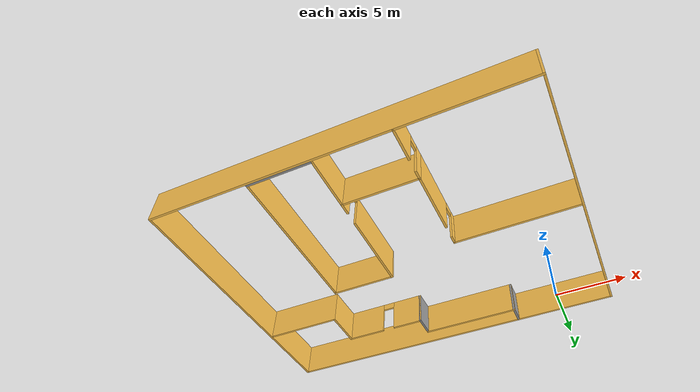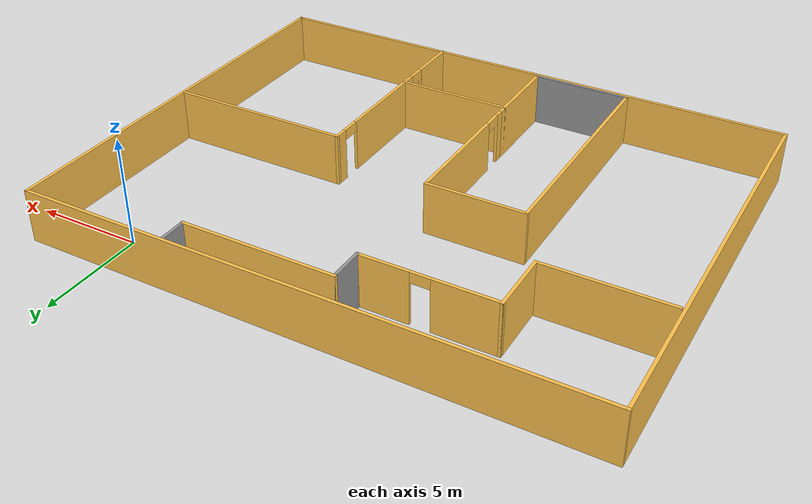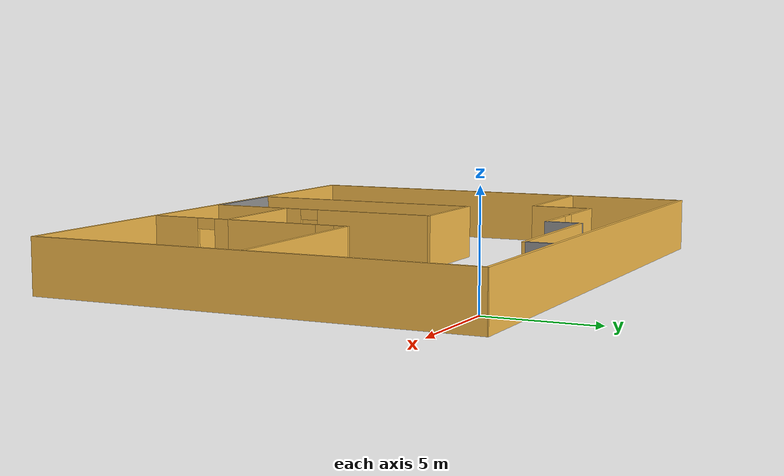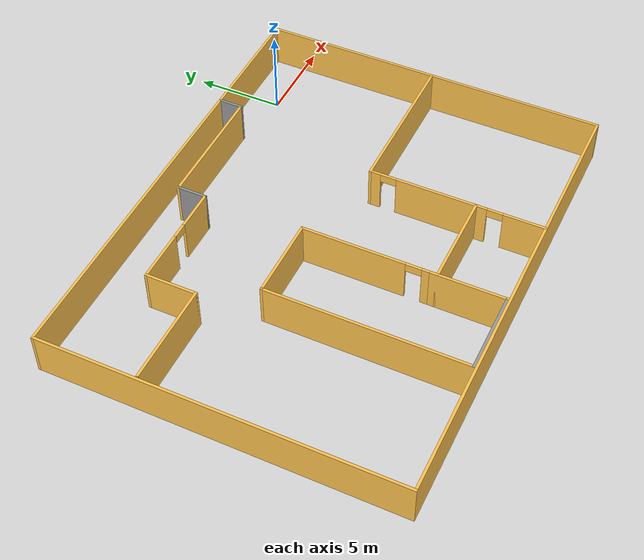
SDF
<?xml version='1.0'?>
<sdf version='1.6'>
  <model name='apartment'>
    <pose frame=''>-9.34307 -8.2219 0 0 -0 0</pose>
    <link name='Wall_100'>
      <collision name='Wall_100_Collision'>
        <geometry>
          <box>
            <size>4.25 0.15 2.5</size>
          </box>
        </geometry>
        <pose frame=''>0 0 1.25 0 -0 0</pose>
      </collision>
      <visual name='Wall_100_Visual'>
        <pose frame=''>0 0 1.25 0 -0 0</pose>
        <geometry>
          <box>
            <size>4.25 0.15 2.5</size>
          </box>
        </geometry>
        <material>
          <script>
            <uri>file://media/materials/scripts/gazebo.material</uri>
            <name>Gazebo/Grey</name>
          </script>
          <ambient>1 0.764706 0.305882 1</ambient>
        </material>
        <meta>
          <layer>0</layer>
        </meta>
      </visual>
      <pose frame=''>-0.999926 -7.85236 0 0 -0 1.5708</pose>
    </link>
    <link name='Wall_102'>
      <pose frame=''>4.35007 -8.0771 0 0 0 -1.5708</pose>
      <visual name='Wall_102_Visual_0'>
        <pose frame=''>-1.64399 0 1.25 0 -0 0</pose>
        <geometry>
          <box>
            <size>0.712026 0.15 2.5</size>
          </box>
        </geometry>
        <material>
          <script>
            <uri>file://media/materials/scripts/gazebo.material</uri>
            <name>Gazebo/Grey</name>
          </script>
          <ambient>1 0.764706 0.305882 1</ambient>
        </material>
        <meta>
          <layer>0</layer>
        </meta>
      </visual>
      <collision name='Wall_102_Collision_0'>
        <geometry>
          <box>
            <size>0.712026 0.15 2.5</size>
          </box>
        </geometry>
        <pose frame=''>-1.64399 0 1.25 0 -0 0</pose>
      </collision>
      <visual name='Wall_102_Visual_1'>
        <pose frame=''>0.806013 0 1.25 0 -0 0</pose>
        <geometry>
          <box>
            <size>2.38797 0.15 2.5</size>
          </box>
        </geometry>
        <material>
          <script>
            <uri>file://media/materials/scripts/gazebo.material</uri>
            <name>Gazebo/Grey</name>
          </script>
          <ambient>1 0.764706 0.305882 1</ambient>
        </material>
        <meta>
          <layer>0</layer>
        </meta>
      </visual>
      <collision name='Wall_102_Collision_1'>
        <geometry>
          <box>
            <size>2.38797 0.15 2.5</size>
          </box>
        </geometry>
        <pose frame=''>0.806013 0 1.25 0 -0 0</pose>
      </collision>
      <visual name='Wall_102_Visual_2'>
        <pose frame=''>-0.837974 0 2.25 0 -0 0</pose>
        <geometry>
          <box>
            <size>0.9 0.15 0.5</size>
          </box>
        </geometry>
        <material>
          <script>
            <uri>file://media/materials/scripts/gazebo.material</uri>
            <name>Gazebo/Grey</name>
          </script>
          <ambient>1 0.764706 0.305882 1</ambient>
        </material>
        <meta>
          <layer>0</layer>
        </meta>
      </visual>
      <collision name='Wall_102_Collision_2'>
        <geometry>
          <box>
            <size>0.9 0.15 0.5</size>
          </box>
        </geometry>
        <pose frame=''>-0.837974 0 2.25 0 -0 0</pose>
      </collision>
    </link>
    <link name='Wall_76'>
      <collision name='Wall_76_Collision'>
        <geometry>
          <box>
            <size>26.25 0.15 2.5</size>
          </box>
        </geometry>
        <pose frame=''>0 0 1.25 0 -0 0</pose>
      </collision>
      <visual name='Wall_76_Visual'>
        <pose frame=''>0 0 1.25 0 -0 0</pose>
        <geometry>
          <box>
            <size>26.25 0.15 2.5</size>
          </box>
        </geometry>
        <material>
          <script>
            <uri>file://media/materials/scripts/gazebo.material</uri>
            <name>Gazebo/Grey</name>
          </script>
          <ambient>1 0.764706 0.305882 1</ambient>
        </material>
        <meta>
          <layer>0</layer>
        </meta>
      </visual>
      <pose frame=''>-7.2e-05 10.0501 0 0 -0 3.14159</pose>
    </link>
    <link name='Wall_77'>
      <collision name='Wall_77_Collision'>
        <geometry>
          <box>
            <size>20.25 0.15 2.5</size>
          </box>
        </geometry>
        <pose frame=''>0 0 1.25 0 -0 0</pose>
      </collision>
      <visual name='Wall_77_Visual'>
        <pose frame=''>0 0 1.25 0 -0 0</pose>
        <geometry>
          <box>
            <size>20.25 0.15 2.5</size>
          </box>
        </geometry>
        <material>
          <script>
            <uri>file://media/materials/scripts/gazebo.material</uri>
            <name>Gazebo/Grey</name>
          </script>
          <ambient>1 0.764706 0.305882 1</ambient>
        </material>
        <meta>
          <layer>0</layer>
        </meta>
      </visual>
      <pose frame=''>-13.0501 9.7e-05 0 0 0 -1.5708</pose>
    </link>
    <link name='Wall_78'>
      <collision name='Wall_78_Collision'>
        <geometry>
          <box>
            <size>26.25 0.15 2.5</size>
          </box>
        </geometry>
        <pose frame=''>0 0 1.25 0 -0 0</pose>
      </collision>
      <visual name='Wall_78_Visual'>
        <pose frame=''>0 0 1.25 0 -0 0</pose>
        <geometry>
          <box>
            <size>26.25 0.15 2.5</size>
          </box>
        </geometry>
        <material>
          <script>
            <uri>file://media/materials/scripts/gazebo.material</uri>
            <name>Gazebo/Grey</name>
          </script>
          <ambient>1 0.764706 0.305882 1</ambient>
        </material>
        <meta>
          <layer>0</layer>
        </meta>
      </visual>
      <pose frame=''>-1e-06 -10.05 0 0 0 -7e-06</pose>
    </link>
    <link name='Wall_79'>
      <collision name='Wall_79_Collision'>
        <geometry>
          <box>
            <size>20.2 0.15 2.5</size>
          </box>
        </geometry>
        <pose frame=''>0 0 1.25 0 -0 0</pose>
      </collision>
      <visual name='Wall_79_Visual'>
        <pose frame=''>0 0 1.25 0 -0 0</pose>
        <geometry>
          <box>
            <size>20.2 0.15 2.5</size>
          </box>
        </geometry>
        <material>
          <script>
            <uri>file://media/materials/scripts/gazebo.material</uri>
            <name>Gazebo/Grey</name>
          </script>
          <ambient>1 0.764706 0.305882 1</ambient>
        </material>
        <meta>
          <layer>0</layer>
        </meta>
      </visual>
      <pose frame=''>13.0501 -0.025096 0 0 -0 1.5708</pose>
    </link>
    <link name='Wall_81'>
      <collision name='Wall_81_Collision'>
        <geometry>
          <box>
            <size>5.75 0.15 2.5</size>
          </box>
        </geometry>
        <pose frame=''>0 0 1.25 0 -0 0</pose>
      </collision>
      <visual name='Wall_81_Visual'>
        <pose frame=''>0 0 1.25 0 -0 0</pose>
        <geometry>
          <box>
            <size>5.75 0.15 2.5</size>
          </box>
        </geometry>
        <material>
          <script>
            <uri>file://media/materials/scripts/gazebo.material</uri>
            <name>Gazebo/Grey</name>
          </script>
          <ambient>1 0.764706 0.305882 1</ambient>
        </material>
        <meta>
          <layer>0</layer>
        </meta>
      </visual>
      <pose frame=''>-10.0529 4.27779 0 0 -0 0</pose>
    </link>
    <link name='Wall_82'>
      <collision name='Wall_82_Collision'>
        <geometry>
          <box>
            <size>3 0.15 2.5</size>
          </box>
        </geometry>
        <pose frame=''>0 0 1.25 0 -0 0</pose>
      </collision>
      <visual name='Wall_82_Visual'>
        <pose frame=''>0 0 1.25 0 -0 0</pose>
        <geometry>
          <box>
            <size>3 0.15 2.5</size>
          </box>
        </geometry>
        <material>
          <script>
            <uri>file://media/materials/scripts/gazebo.material</uri>
            <name>Gazebo/Grey</name>
          </script>
          <ambient>1 0.764706 0.305882 1</ambient>
        </material>
        <meta>
          <layer>0</layer>
        </meta>
      </visual>
      <pose frame=''>-7.2529 5.70279 0 0 -0 1.5708</pose>
    </link>
    <link name='Wall_83'>
      <pose frame=''>-4.2029 7.12779 0 0 -0 0</pose>
      <visual name='Wall_83_Visual_0'>
        <pose frame=''>-1.63623 0 1.25 0 -0 0</pose>
        <geometry>
          <box>
            <size>2.97755 0.15 2.5</size>
          </box>
        </geometry>
        <material>
          <script>
            <uri>file://media/materials/scripts/gazebo.material</uri>
            <name>Gazebo/Grey</name>
          </script>
          <ambient>1 0.764706 0.305882 1</ambient>
        </material>
        <meta>
          <layer>0</layer>
        </meta>
      </visual>
      <collision name='Wall_83_Collision_0'>
        <geometry>
          <box>
            <size>2.97755 0.15 2.5</size>
          </box>
        </geometry>
        <pose frame=''>-1.63623 0 1.25 0 -0 0</pose>
      </collision>
      <visual name='Wall_83_Visual_1'>
        <pose frame=''>1.93877 0 1.25 0 -0 0</pose>
        <geometry>
          <box>
            <size>2.37245 0.15 2.5</size>
          </box>
        </geometry>
        <material>
          <script>
            <uri>file://media/materials/scripts/gazebo.material</uri>
            <name>Gazebo/Grey</name>
          </script>
          <ambient>1 0.764706 0.305882 1</ambient>
        </material>
        <meta>
          <layer>0</layer>
        </meta>
      </visual>
      <collision name='Wall_83_Collision_1'>
        <geometry>
          <box>
            <size>2.37245 0.15 2.5</size>
          </box>
        </geometry>
        <pose frame=''>1.93877 0 1.25 0 -0 0</pose>
      </collision>
      <visual name='Wall_83_Visual_2'>
        <pose frame=''>0.302549 0 2.25 0 -0 0</pose>
        <geometry>
          <box>
            <size>0.9 0.15 0.5</size>
          </box>
        </geometry>
        <material>
          <script>
            <uri>file://media/materials/scripts/gazebo.material</uri>
            <name>Gazebo/Grey</name>
          </script>
          <ambient>1 0.764706 0.305882 1</ambient>
        </material>
        <meta>
          <layer>0</layer>
        </meta>
      </visual>
      <collision name='Wall_83_Collision_2'>
        <geometry>
          <box>
            <size>0.9 0.15 0.5</size>
          </box>
        </geometry>
        <pose frame=''>0.302549 0 2.25 0 -0 0</pose>
      </collision>
    </link>
    <link name='Wall_84'>
      <collision name='Wall_84_Collision'>
        <geometry>
          <box>
            <size>1.75 0.15 2.5</size>
          </box>
        </geometry>
        <pose frame=''>0 0 1.25 0 -0 0</pose>
      </collision>
      <visual name='Wall_84_Visual'>
        <pose frame=''>0 0 1.25 0 -0 0</pose>
        <geometry>
          <box>
            <size>1.75 0.15 2.5</size>
          </box>
        </geometry>
        <material>
          <script>
            <uri>file://media/materials/scripts/gazebo.material</uri>
            <name>Gazebo/Grey</name>
          </script>
          <ambient>1 1 1 1</ambient>
        </material>
        <meta>
          <layer>0</layer>
        </meta>
      </visual>
      <pose frame=''>-1.1529 7.92779 0 0 -0 1.5708</pose>
    </link>
    <link name='Wall_85'>
      <collision name='Wall_85_Collision'>
        <geometry>
          <box>
            <size>7.25 0.15 2.5</size>
          </box>
        </geometry>
        <pose frame=''>0 0 1.25 0 -0 0</pose>
      </collision>
      <visual name='Wall_85_Visual'>
        <pose frame=''>0 0 1.25 0 -0 0</pose>
        <geometry>
          <box>
            <size>7.25 0.15 2.5</size>
          </box>
        </geometry>
        <material>
          <script>
            <uri>file://media/materials/scripts/gazebo.material</uri>
            <name>Gazebo/Grey</name>
          </script>
          <ambient>1 0.764706 0.305882 1</ambient>
        </material>
        <meta>
          <layer>0</layer>
        </meta>
      </visual>
      <pose frame=''>2.39709 8.72785 0 0 -0 1.7e-05</pose>
    </link>
    <link name='Wall_91'>
      <collision name='Wall_91_Collision'>
        <geometry>
          <box>
            <size>1.4 0.15 2.5</size>
          </box>
        </geometry>
        <pose frame=''>0 0 1.25 0 -0 0</pose>
      </collision>
      <visual name='Wall_91_Visual'>
        <pose frame=''>0 0 1.25 0 -0 0</pose>
        <geometry>
          <box>
            <size>1.4 0.15 2.5</size>
          </box>
        </geometry>
        <material>
          <script>
            <uri>file://media/materials/scripts/gazebo.material</uri>
            <name>Gazebo/Grey</name>
          </script>
          <ambient>1 1 1 1</ambient>
        </material>
        <meta>
          <layer>0</layer>
        </meta>
      </visual>
      <pose frame=''>5.94707 9.3529 0 0 -0 1.5708</pose>
    </link>
    <link name='Wall_93'>
      <collision name='Wall_93_Collision'>
        <geometry>
          <box>
            <size>8.75 0.15 2.5</size>
          </box>
        </geometry>
        <pose frame=''>0 0 1.25 0 -0 0</pose>
      </collision>
      <visual name='Wall_93_Visual'>
        <pose frame=''>0 0 1.25 0 -0 0</pose>
        <geometry>
          <box>
            <size>8.75 0.15 2.5</size>
          </box>
        </geometry>
        <material>
          <script>
            <uri>file://media/materials/scripts/gazebo.material</uri>
            <name>Gazebo/Grey</name>
          </script>
          <ambient>1 0.764706 0.305882 1</ambient>
        </material>
        <meta>
          <layer>0</layer>
        </meta>
      </visual>
      <pose frame=''>8.65007 -0.052355 0 0 -0 3.14159</pose>
    </link>
    <link name='Wall_94'>
      <pose frame=''>4.35007 -3.10222 0 0 0 -1.5708</pose>
      <visual name='Wall_94_Visual_0'>
        <pose frame=''>-2.77501 0 1.25 0 -0 0</pose>
        <geometry>
          <box>
            <size>0.699978 0.15 2.5</size>
          </box>
        </geometry>
        <material>
          <script>
            <uri>file://media/materials/scripts/gazebo.material</uri>
            <name>Gazebo/Grey</name>
          </script>
          <ambient>1 0.764706 0.305882 1</ambient>
        </material>
        <meta>
          <layer>0</layer>
        </meta>
      </visual>
      <collision name='Wall_94_Collision_0'>
        <geometry>
          <box>
            <size>0.699978 0.15 2.5</size>
          </box>
        </geometry>
        <pose frame=''>-2.77501 0 1.25 0 -0 0</pose>
      </collision>
      <visual name='Wall_94_Visual_1'>
        <pose frame=''>0.799989 0 1.25 0 -0 0</pose>
        <geometry>
          <box>
            <size>4.65002 0.15 2.5</size>
          </box>
        </geometry>
        <material>
          <script>
            <uri>file://media/materials/scripts/gazebo.material</uri>
            <name>Gazebo/Grey</name>
          </script>
          <ambient>1 0.764706 0.305882 1</ambient>
        </material>
        <meta>
          <layer>0</layer>
        </meta>
      </visual>
      <collision name='Wall_94_Collision_1'>
        <geometry>
          <box>
            <size>4.65002 0.15 2.5</size>
          </box>
        </geometry>
        <pose frame=''>0.799989 0 1.25 0 -0 0</pose>
      </collision>
      <visual name='Wall_94_Visual_2'>
        <pose frame=''>-1.97502 0 2.25 0 -0 0</pose>
        <geometry>
          <box>
            <size>0.9 0.15 0.5</size>
          </box>
        </geometry>
        <material>
          <script>
            <uri>file://media/materials/scripts/gazebo.material</uri>
            <name>Gazebo/Grey</name>
          </script>
          <ambient>1 0.764706 0.305882 1</ambient>
        </material>
        <meta>
          <layer>0</layer>
        </meta>
      </visual>
      <collision name='Wall_94_Collision_2'>
        <geometry>
          <box>
            <size>0.9 0.15 0.5</size>
          </box>
        </geometry>
        <pose frame=''>-1.97502 0 2.25 0 -0 0</pose>
      </collision>
    </link>
    <link name='Wall_95'>
      <collision name='Wall_95_Collision'>
        <geometry>
          <box>
            <size>5.5 0.15 2.5</size>
          </box>
        </geometry>
        <pose frame=''>0 0 1.25 0 -0 0</pose>
      </collision>
      <visual name='Wall_95_Visual'>
        <pose frame=''>0 0 1.25 0 -0 0</pose>
        <geometry>
          <box>
            <size>5.5 0.15 2.5</size>
          </box>
        </geometry>
        <material>
          <script>
            <uri>file://media/materials/scripts/gazebo.material</uri>
            <name>Gazebo/Grey</name>
          </script>
          <ambient>1 0.764706 0.305882 1</ambient>
        </material>
        <meta>
          <layer>0</layer>
        </meta>
      </visual>
      <pose frame=''>1.67507 -6.15222 0 0 0 -3.14154</pose>
    </link>
    <link name='Wall_96'>
      <pose frame=''>-0.999926 -2.35236 0 0 -0 1.5708</pose>
      <visual name='Wall_96_Visual_0'>
        <pose frame=''>-3.41567 0 1.25 0 -0 0</pose>
        <geometry>
          <box>
            <size>0.918665 0.15 2.5</size>
          </box>
        </geometry>
        <material>
          <script>
            <uri>file://media/materials/scripts/gazebo.material</uri>
            <name>Gazebo/Grey</name>
          </script>
          <ambient>1 0.764706 0.305882 1</ambient>
        </material>
        <meta>
          <layer>0</layer>
        </meta>
      </visual>
      <collision name='Wall_96_Collision_0'>
        <geometry>
          <box>
            <size>0.918665 0.15 2.5</size>
          </box>
        </geometry>
        <pose frame=''>-3.41567 0 1.25 0 -0 0</pose>
      </collision>
      <visual name='Wall_96_Visual_1'>
        <pose frame=''>0.909332 0 1.25 0 -0 0</pose>
        <geometry>
          <box>
            <size>5.93133 0.15 2.5</size>
          </box>
        </geometry>
        <material>
          <script>
            <uri>file://media/materials/scripts/gazebo.material</uri>
            <name>Gazebo/Grey</name>
          </script>
          <ambient>1 0.764706 0.305882 1</ambient>
        </material>
        <meta>
          <layer>0</layer>
        </meta>
      </visual>
      <collision name='Wall_96_Collision_1'>
        <geometry>
          <box>
            <size>5.93133 0.15 2.5</size>
          </box>
        </geometry>
        <pose frame=''>0.909332 0 1.25 0 -0 0</pose>
      </collision>
      <visual name='Wall_96_Visual_2'>
        <pose frame=''>-2.50633 0 2.25 0 -0 0</pose>
        <geometry>
          <box>
            <size>0.9 0.15 0.5</size>
          </box>
        </geometry>
        <material>
          <script>
            <uri>file://media/materials/scripts/gazebo.material</uri>
            <name>Gazebo/Grey</name>
          </script>
          <ambient>1 0.764706 0.305882 1</ambient>
        </material>
        <meta>
          <layer>0</layer>
        </meta>
      </visual>
      <collision name='Wall_96_Collision_2'>
        <geometry>
          <box>
            <size>0.9 0.15 0.5</size>
          </box>
        </geometry>
        <pose frame=''>-2.50633 0 2.25 0 -0 0</pose>
      </collision>
    </link>
    <link name='Wall_97'>
      <collision name='Wall_97_Collision'>
        <geometry>
          <box>
            <size>4.75 0.15 2.5</size>
          </box>
        </geometry>
        <pose frame=''>0 0 1.25 0 -0 0</pose>
      </collision>
      <visual name='Wall_97_Visual'>
        <pose frame=''>0 0 1.25 0 -0 0</pose>
        <geometry>
          <box>
            <size>4.75 0.15 2.5</size>
          </box>
        </geometry>
        <material>
          <script>
            <uri>file://media/materials/scripts/gazebo.material</uri>
            <name>Gazebo/Grey</name>
          </script>
          <ambient>1 0.764706 0.305882 1</ambient>
        </material>
        <meta>
          <layer>0</layer>
        </meta>
      </visual>
      <pose frame=''>-3.29993 1.44765 0 0 -0 3.14159</pose>
    </link>
    <link name='Wall_98'>
      <collision name='Wall_98_Collision'>
        <geometry>
          <box>
            <size>11.5 0.15 2.5</size>
          </box>
        </geometry>
        <pose frame=''>0 0 1.25 0 -0 0</pose>
      </collision>
      <visual name='Wall_98_Visual'>
        <pose frame=''>0 0 1.25 0 -0 0</pose>
        <geometry>
          <box>
            <size>11.5 0.15 2.5</size>
          </box>
        </geometry>
        <material>
          <script>
            <uri>file://media/materials/scripts/gazebo.material</uri>
            <name>Gazebo/Grey</name>
          </script>
          <ambient>1 0.764706 0.305882 1</ambient>
        </material>
        <meta>
          <layer>0</layer>
        </meta>
      </visual>
      <pose frame=''>-5.59993 -4.22736 0 0 0 -1.5708</pose>
    </link>
    <link name='Wall_99'>
      <collision name='Wall_99_Collision'>
        <geometry>
          <box>
            <size>4.75 0.15 2.5</size>
          </box>
        </geometry>
        <pose frame=''>0 0 1.25 0 -0 0</pose>
      </collision>
      <visual name='Wall_99_Visual'>
        <pose frame=''>0 0 1.25 0 -0 0</pose>
        <geometry>
          <box>
            <size>4.75 0.15 2.5</size>
          </box>
        </geometry>
        <material>
          <script>
            <uri>file://media/materials/scripts/gazebo.material</uri>
            <name>Gazebo/Grey</name>
          </script>
          <ambient>1 1 1 1</ambient>
        </material>
        <meta>
          <layer>0</layer>
        </meta>
      </visual>
      <pose frame=''>-3.29993 -9.90235 0 0 -0 0</pose>
    </link>
    <static>1</static>
  </model>
</sdf>
